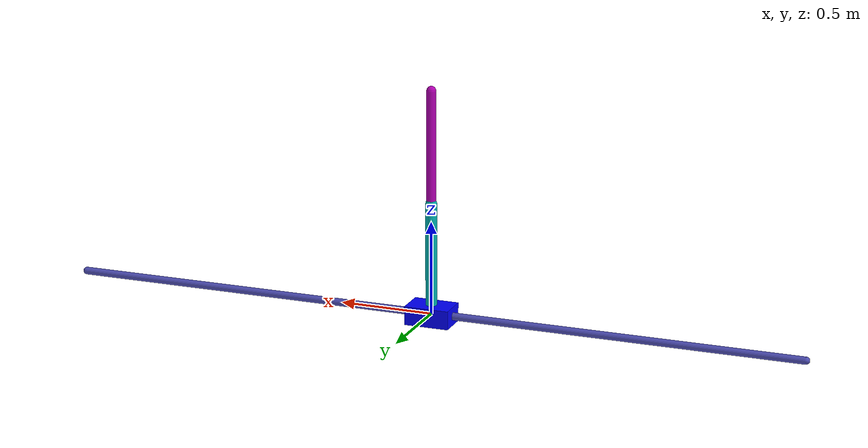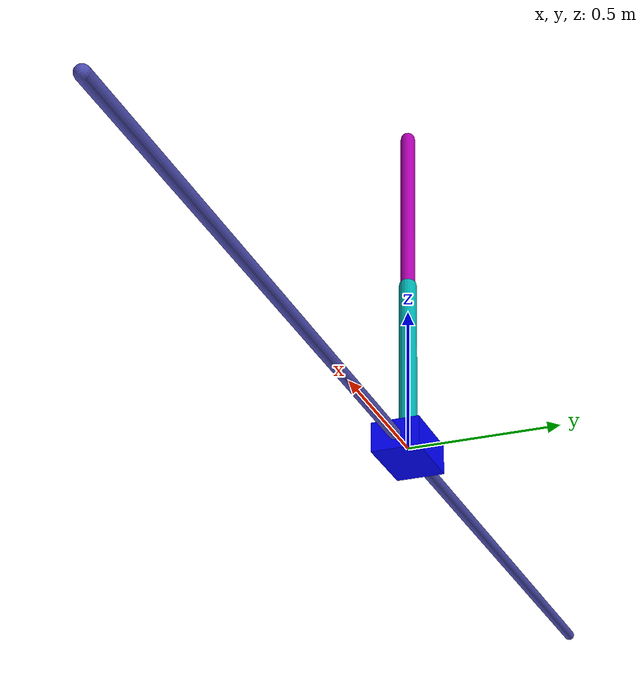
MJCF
<mujoco model="cart_double_inverted_pendulum">

    <compiler angle="radian" inertiafromgeom="true"/>

    <option gravity="0 0 -9.81"
            timestep="0.005"
            integrator="RK4"/>

    <default>
        <joint damping="0.05" armature="0.01"/>
        <geom density="1000" friction="1 0.1 0.1" contype="0" conaffinity="0"/>
        <velocity ctrllimited="true" ctrlrange="-3 3"/>
    </default>

    <worldbody>
        <!-- Rail (horizontal, along X axis) -->
        <geom name="rail"
              type="capsule"
              pos="0 0 0"
              quat="0.707 0 0.707 0"
              size="0.02 2"
              rgba="0.3 0.3 0.7 1"/>

        <!-- Cart -->
        <body name="cart" pos="0 0 0">
            <joint name="slider"
                   type="slide"
                   axis="1 0 0"
                   range="-2 2"
                   damping="0.5"/>

            <geom name="cart_geom"
                  type="box"
                  size="0.12 0.08 0.05"
                  rgba="0 0 1 1"
                  mass="1.0"/>

            <!-- First pole — attached at cart center, rotates around Y axis -->
            <body name="pole1" pos="0 0 0">
                <joint name="hinge1"
                       type="hinge"
                       axis="0 1 0"
                       limited="false"
                       damping="0.01"/>

                <geom name="pole1_geom"
                      type="capsule"
                      fromto="0 0 0 0 0 0.6"
                      size="0.03"
                      mass="0.2"
                      rgba="0 0.7 0.7 1"/>

                <!-- Second pole — attached at tip of pole1 -->
                <body name="pole2" pos="0 0 0.6">
                    <joint name="hinge2"
                           type="hinge"
                           axis="0 1 0"
                           limited="false"
                           damping="0.01"/>

                    <geom name="pole2_geom"
                          type="capsule"
                          fromto="0 0 0 0 0 0.6"
                          size="0.025"
                          mass="0.15"
                          rgba="0.7 0 0.7 1"/>

                    <site name="tip" pos="0 0 0.6" size="0.015"/>
                </body>
            </body>
        </body>
    </worldbody>

    <!-- VELOCITY CONTROL on the cart slider -->
    <actuator>
        <velocity name="cart_velocity_a"
                  joint="slider"
                  kv="10"
                  ctrlrange="-5 5"/>
    </actuator>

    <sensor>
        <!-- Cart position and velocity -->
        <jointpos  name="cart_pos"   joint="slider"/>
        <jointvel  name="cart_vel"   joint="slider"/>
        <!-- Pole 1 angle and angular velocity -->
        <jointpos  name="hinge1_pos" joint="hinge1"/>
        <jointvel  name="hinge1_vel" joint="hinge1"/>
        <!-- Pole 2 angle and angular velocity -->
        <jointpos  name="hinge2_pos" joint="hinge2"/>
        <jointvel  name="hinge2_vel" joint="hinge2"/>
        <!-- Tip position (world frame) for reward shaping -->
        <framepos  name="tip_pos"    objtype="site" objname="tip"/>
    </sensor>

    <keyframe>
        <key name="hanging_down"
             qpos="0 0 0"
             qvel="0 0 0"/>
        <key name="upright"
             qpos="0 0 0"
             qvel="0 0 0"/>
    </keyframe>

</mujoco>
